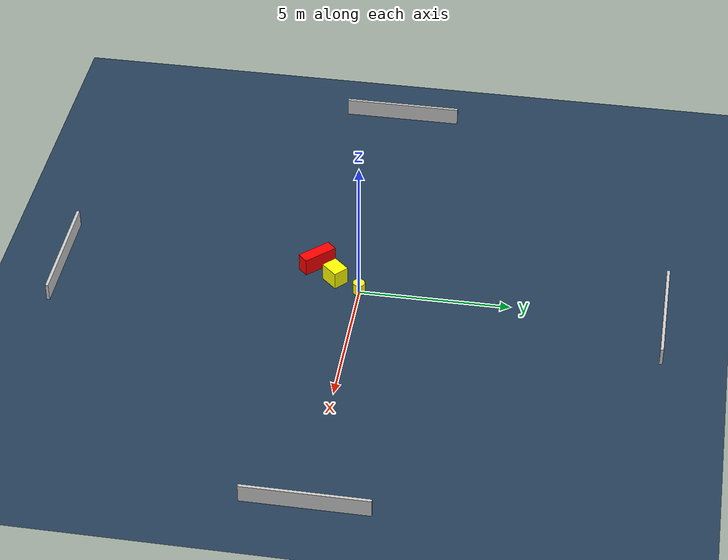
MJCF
<?xml version="1.0" ?>
<mujoco model="generated_environment">
  <option timestep="0.01" integrator="RK4" cone="elliptic"/>
  <default>
    <geom density="1"/>
  </default>
  <asset>
    <texture builtin="gradient" height="3072" name="skybox" rgb1="0.3 0.5 0.7" rgb2="0 0 0" type="skybox" width="512"/>
    <texture builtin="checker" height="300" name="groundplane" rgb1="0.2 0.3 0.4" rgb2="0.1 0.2 0.3" type="2d" width="300"/>
    <material name="groundplane" reflectance="0.2" texrepeat="5 5" texture="groundplane"/>
  </asset>
  <worldbody>
    <light dir="0 0 -1" directional="true" pos="0 0 1.5"/>
    <geom condim="3" friction="0.5 0.005 0.001" material="groundplane" name="floor" pos="0 0 0" size="0 0 0.05" type="plane"/>
    <body name="walls">
      <geom name="wall_1" condim="4" pos="-10.0 0.0 0.3" rgba="0.800000011920929 0.800000011920929 0.800000011920929 1.0" size="0.05 2.0 0.3" type="box"/>
      <geom name="wall_2" condim="4" pos="10.0 0.0 0.3" rgba="0.800000011920929 0.800000011920929 0.800000011920929 1.0" size="0.05 2.0 0.3" type="box"/>
      <geom name="wall_3" condim="4" pos="0.0 -10.0 0.3" rgba="0.800000011920929 0.800000011920929 0.800000011920929 1.0" size="2.0 0.05 0.3" type="box"/>
      <geom name="wall_4" condim="4" pos="0.0 10.0 0.3" rgba="0.800000011920929 0.800000011920929 0.800000011920929 1.0" size="2.0 0.05 0.3" type="box"/>
    </body>
    <body name="robot">
      <joint name="joint_x" type="slide" pos="0 0 0" axis="1 0 0"/>
      <joint name="joint_y" type="slide" pos="0 0 0" axis="0 1 0"/>
      <geom name="robot" type="cylinder" pos="0.0 0.0 0.2" size="0.2 0.2 0.0" mass="5.0" friction="1.0 0.005 0.0001" condim="4" rgba="1.0 1.0 0.0 1.0"/>
    </body>
    <body name="obstacle_1_movable">
      <geom name="obstacle_1_movable" condim="4" pos="-0.46137312695901317 -0.8680443694337073 0.3" euler="0 0 47.14304748023412" friction="0.0 0.005 0.001" rgba="1.0 1.0 0.0 1.0" size="0.3322971395191813 0.27003283638805614 0.3" type="box" mass="0.1"/>
      <joint type="free"/>
    </body>
    <body name="obstacle_2_static">
      <geom name="obstacle_2_static" condim="4" pos="-1.1363803692088166 -1.5901047536887858 0.3" euler="0 0 44.07840935933818" friction="0.0 0.005 0.001" rgba="1.0 0.0 0.0 1.0" size="0.2054177682456912 0.5902146532359074 0.3" type="box"/>
    </body>
  </worldbody>
  <actuator>
    <motor name="actuator_x" joint="joint_x" gear="1" ctrlrange="-1 1"/>
    <motor name="actuator_y" joint="joint_y" gear="1" ctrlrange="-1 1"/>
  </actuator>
</mujoco>
